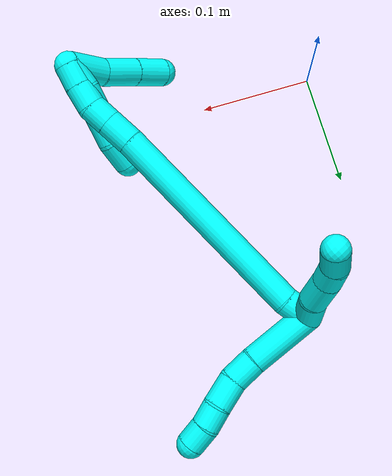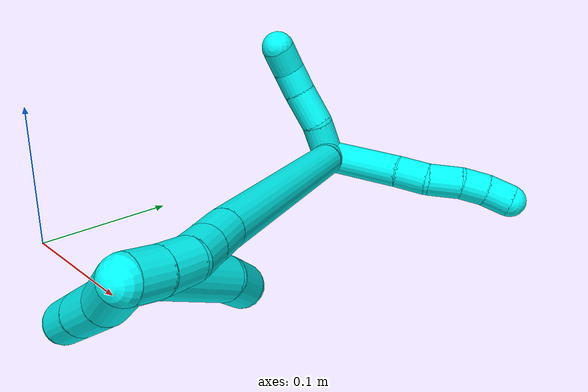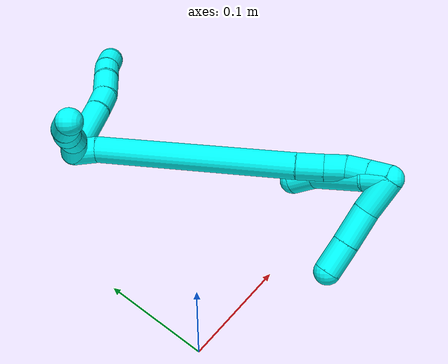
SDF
<sdf version="1.7">
 <world name="default">
  <model name="photoneo_s_sensor">
   <static>1</static>
   <pose>0 0 2 1.57079 1.57079 3.14159</pose>
   <link name="link">
    <inertial><mass>0.1</mass></inertial>
    <sensor name="sensor" type="depth">
     <update_rate>30</update_rate>
     <camera>
      <horizontal_fov>1.22</horizontal_fov>
      <image><width>1920</width><height>1200</height><format>B8G8R8</format></image>
      <clip><near>0.1</near><far>4</far></clip>
      <depth_camera><output>points</output></depth_camera>
     </camera>
     <plugin name="camera_plugin" filename="libgazebo_ros_depth_camera.so">
      <baseline>0.2</baseline>
      <alwaysOn>1</alwaysOn>
      <updateRate>0.0</updateRate>
      <cameraName>camera_ir</cameraName>
      <imageTopicName>/camera/color/image_raw</imageTopicName>
      <cameraInfoTopicName>/camera/color/camera_info</cameraInfoTopicName>
      <depthImageTopicName>/camera/depth/image_raw</depthImageTopicName>
      <depthImageCameraInfoTopicName>/camera/depth/camera_info</depthImageCameraInfoTopicName>
      <pointCloudTopicName>/camera/depth/points</pointCloudTopicName>
      <frameName>fr_optical</frameName>
      <pointCloudCutoff>0.1</pointCloudCutoff>
      <pointCloudCutoffMax>2.0</pointCloudCutoffMax>
      <distortionK1>0</distortionK1>
      <distortionK2>0</distortionK2>
      <distortionK3>0</distortionK3>
      <distortionT1>0</distortionT1>
      <distortionT2>0</distortionT2>
      <CxPrime>0</CxPrime>
      <Cx>0</Cx>
      <Cy>0</Cy>
      <focalLength>0</focalLength>
      <hackBaseline>0</hackBaseline>
     </plugin>
    </sensor>
   </link>
  </model>
  <model name="bin">
   <static>1</static>
   <link name="bottom">
    <collision name="collision-bottom">
     <pose>0 0 -0.01 0 -0 0</pose>
     <geometry><box><size>0.8 0.6 0.02</size></box></geometry>
     <surface>
      <friction><ode><mu>100</mu><mu2>100</mu2></ode></friction>
      <contact><collide_bitmask>65535</collide_bitmask></contact>
     </surface>
    </collision>
   </link>
   <link name="west_wall">
    <collision name="collision-west_wall">
     <pose>-0.41 0 0.1 0 -0 0</pose>
     <geometry><box><size>0.02 0.6 0.2</size></box></geometry>
     <surface>
      <friction><ode><mu>100</mu><mu2>100</mu2></ode></friction>
      <contact><collide_bitmask>65535</collide_bitmask></contact>
     </surface>
    </collision>
   </link>
   <link name="east_wall">
    <collision name="collision-east_wall">
     <pose>0.41 0 0.1 0 -0 0</pose>
     <geometry><box><size>0.02 0.6 0.2</size></box></geometry>
     <surface>
      <friction><ode><mu>100</mu><mu2>100</mu2></ode></friction>
      <contact><collide_bitmask>65535</collide_bitmask></contact>
     </surface>
    </collision>
   </link>
   <link name="south_wall">
    <collision name="collision-south_wall">
     <pose>0 -0.31 0.1 0 -0 0</pose>
     <geometry><box><size>0.8 0.02 0.2</size></box></geometry>
     <surface>
      <friction><ode><mu>100</mu><mu2>100</mu2></ode></friction>
      <contact><collide_bitmask>65535</collide_bitmask></contact>
     </surface>
    </collision>
   </link>
   <link name="north_wall">
    <collision name="collision-north_wall">
     <pose>0 0.31 0.1 0 -0 0</pose>
     <geometry><box><size>0.8 0.02 0.2</size></box></geometry>
     <surface>
      <friction><ode><mu>100</mu><mu2>100</mu2></ode></friction>
      <contact><collide_bitmask>65535</collide_bitmask></contact>
     </surface>
    </collision>
   </link>
  </model>
  <model name="3">
   <static>0</static>
   <link name="3">
    <collision name="collision-cylinder-e_1_2_8">
     <pose>0.023186 0.018811 0.001974 -1.46625 0.886525 -0.808074</pose>
     <geometry><cylinder><radius>0.0125</radius><length>0.059845</length></cylinder></geometry>
     <surface>
      <friction><ode><mu>1.16</mu><mu2>1.16</mu2><slip1>0</slip1><slip2>0</slip2></ode></friction>
      <contact><ode><kp>1e+06</kp><kd>1</kd><max_vel>0</max_vel><min_depth>0.001</min_depth></ode></contact>
     </surface>
    </collision>
    <visual name="visual-cylinder-e_1_2_8">
     <pose>0.023186 0.018811 0.001974 -1.46625 0.886525 -0.808074</pose>
     <geometry><cylinder><radius>0.0125</radius><length>0.059845</length></cylinder></geometry>
     <material><ambient>0.003922 1 0.996078 1</ambient></material>
    </visual>
    <collision name="collision-cylinder-e_2_8_9">
     <pose>0.055933 0.044662 0.003749 -1.59908 0.935888 -0.958853</pose>
     <geometry><cylinder><radius>0.0125</radius><length>0.023749</length></cylinder></geometry>
     <surface>
      <friction><ode><mu>1.16</mu><mu2>1.16</mu2><slip1>0</slip1><slip2>0</slip2></ode></friction>
      <contact><ode><kp>1e+06</kp><kd>1</kd><max_vel>0</max_vel><min_depth>0.001</min_depth></ode></contact>
     </surface>
    </collision>
    <visual name="visual-cylinder-e_2_8_9">
     <pose>0.055933 0.044662 0.003749 -1.59908 0.935888 -0.958853</pose>
     <geometry><cylinder><radius>0.0125</radius><length>0.023749</length></cylinder></geometry>
     <material><ambient>0.003922 1 0.996078 1</ambient></material>
    </visual>
    <collision name="collision-cylinder-e_3_9_10">
     <pose>0.074591 0.060245 0.000296 -1.93467 0.782951 -1.07922</pose>
     <geometry><cylinder><radius>0.0125</radius><length>0.025794</length></cylinder></geometry>
     <surface>
      <friction><ode><mu>1.16</mu><mu2>1.16</mu2><slip1>0</slip1><slip2>0</slip2></ode></friction>
      <contact><ode><kp>1e+06</kp><kd>1</kd><max_vel>0</max_vel><min_depth>0.001</min_depth></ode></contact>
     </surface>
    </collision>
    <visual name="visual-cylinder-e_3_9_10">
     <pose>0.074591 0.060245 0.000296 -1.93467 0.782951 -1.07922</pose>
     <geometry><cylinder><radius>0.0125</radius><length>0.025794</length></cylinder></geometry>
     <material><ambient>0.003922 1 0.996078 1</ambient></material>
    </visual>
    <collision name="collision-cylinder-e_4_10_11">
     <pose>0.091672 0.073962 -0.006091 -2.11535 0.922509 -1.44564</pose>
     <geometry><cylinder><radius>0.0125</radius><length>0.020031</length></cylinder></geometry>
     <surface>
      <friction><ode><mu>1.16</mu><mu2>1.16</mu2><slip1>0</slip1><slip2>0</slip2></ode></friction>
      <contact><ode><kp>1e+06</kp><kd>1</kd><max_vel>0</max_vel><min_depth>0.001</min_depth></ode></contact>
     </surface>
    </collision>
    <visual name="visual-cylinder-e_4_10_11">
     <pose>0.091672 0.073962 -0.006091 -2.11535 0.922509 -1.44564</pose>
     <geometry><cylinder><radius>0.0125</radius><length>0.020031</length></cylinder></geometry>
     <material><ambient>0.003922 1 0.996078 1</ambient></material>
    </visual>
    <collision name="collision-cylinder-e_5_11_6">
     <pose>0.108825 0.083463 -0.010975 -1.95538 1.0998 -1.47593</pose>
     <geometry><cylinder><radius>0.0125</radius><length>0.02058</length></cylinder></geometry>
     <surface>
      <friction><ode><mu>1.16</mu><mu2>1.16</mu2><slip1>0</slip1><slip2>0</slip2></ode></friction>
      <contact><ode><kp>1e+06</kp><kd>1</kd><max_vel>0</max_vel><min_depth>0.001</min_depth></ode></contact>
     </surface>
    </collision>
    <visual name="visual-cylinder-e_5_11_6">
     <pose>0.108825 0.083463 -0.010975 -1.95538 1.0998 -1.47593</pose>
     <geometry><cylinder><radius>0.0125</radius><length>0.02058</length></cylinder></geometry>
     <material><ambient>0.003922 1 0.996078 1</ambient></material>
    </visual>
    <collision name="collision-cylinder-e_1_2_12">
     <pose>-0.012252 0.006492 0.005823 -0.839672 -0.952165 0.45246</pose>
     <geometry><cylinder><radius>0.0125</radius><length>0.030078</length></cylinder></geometry>
     <surface>
      <friction><ode><mu>1.16</mu><mu2>1.16</mu2><slip1>0</slip1><slip2>0</slip2></ode></friction>
      <contact><ode><kp>1e+06</kp><kd>1</kd><max_vel>0</max_vel><min_depth>0.001</min_depth></ode></contact>
     </surface>
    </collision>
    <visual name="visual-cylinder-e_1_2_12">
     <pose>-0.012252 0.006492 0.005823 -0.839672 -0.952165 0.45246</pose>
     <geometry><cylinder><radius>0.0125</radius><length>0.030078</length></cylinder></geometry>
     <material><ambient>0.003922 1 0.996078 1</ambient></material>
    </visual>
    <collision name="collision-cylinder-e_2_12_13">
     <pose>-0.038073 0.016556 0.015477 -0.750412 -1.2025 0.527761</pose>
     <geometry><cylinder><radius>0.0125</radius><length>0.02909</length></cylinder></geometry>
     <surface>
      <friction><ode><mu>1.16</mu><mu2>1.16</mu2><slip1>0</slip1><slip2>0</slip2></ode></friction>
      <contact><ode><kp>1e+06</kp><kd>1</kd><max_vel>0</max_vel><min_depth>0.001</min_depth></ode></contact>
     </surface>
    </collision>
    <visual name="visual-cylinder-e_2_12_13">
     <pose>-0.038073 0.016556 0.015477 -0.750412 -1.2025 0.527761</pose>
     <geometry><cylinder><radius>0.0125</radius><length>0.02909</length></cylinder></geometry>
     <material><ambient>0.003922 1 0.996078 1</ambient></material>
    </visual>
    <collision name="collision-cylinder-e_3_13_14">
     <pose>-0.060615 0.02328 0.022721 -0.745702 -1.09289 0.467124</pose>
     <geometry><cylinder><radius>0.0125</radius><length>0.020209</length></cylinder></geometry>
     <surface>
      <friction><ode><mu>1.16</mu><mu2>1.16</mu2><slip1>0</slip1><slip2>0</slip2></ode></friction>
      <contact><ode><kp>1e+06</kp><kd>1</kd><max_vel>0</max_vel><min_depth>0.001</min_depth></ode></contact>
     </surface>
    </collision>
    <visual name="visual-cylinder-e_3_13_14">
     <pose>-0.060615 0.02328 0.022721 -0.745702 -1.09289 0.467124</pose>
     <geometry><cylinder><radius>0.0125</radius><length>0.020209</length></cylinder></geometry>
     <material><ambient>0.003922 1 0.996078 1</ambient></material>
    </visual>
    <collision name="collision-cylinder-e_4_14_5">
     <pose>-0.077219 0.030177 0.031972 -0.570238 -0.833209 0.257961</pose>
     <geometry><cylinder><radius>0.0125</radius><length>0.020623</length></cylinder></geometry>
     <surface>
      <friction><ode><mu>1.16</mu><mu2>1.16</mu2><slip1>0</slip1><slip2>0</slip2></ode></friction>
      <contact><ode><kp>1e+06</kp><kd>1</kd><max_vel>0</max_vel><min_depth>0.001</min_depth></ode></contact>
     </surface>
    </collision>
    <visual name="visual-cylinder-e_4_14_5">
     <pose>-0.077219 0.030177 0.031972 -0.570238 -0.833209 0.257961</pose>
     <geometry><cylinder><radius>0.0125</radius><length>0.020623</length></cylinder></geometry>
     <material><ambient>0.003922 1 0.996078 1</ambient></material>
    </visual>
    <collision name="collision-cylinder-e_1_2_15">
     <pose>0.002152 0.001248 0.011313 -0.109833 0.186832 -0.0103</pose>
     <geometry><cylinder><radius>0.0125</radius><length>0.023166</length></cylinder></geometry>
     <surface>
      <friction><ode><mu>1.16</mu><mu2>1.16</mu2><slip1>0</slip1><slip2>0</slip2></ode></friction>
      <contact><ode><kp>1e+06</kp><kd>1</kd><max_vel>0</max_vel><min_depth>0.001</min_depth></ode></contact>
     </surface>
    </collision>
    <visual name="visual-cylinder-e_1_2_15">
     <pose>0.002152 0.001248 0.011313 -0.109833 0.186832 -0.0103</pose>
     <geometry><cylinder><radius>0.0125</radius><length>0.023166</length></cylinder></geometry>
     <material><ambient>0.003922 1 0.996078 1</ambient></material>
    </visual>
    <collision name="collision-cylinder-e_2_15_16">
     <pose>0.012343 -0.00378 0.117248 0.066217 0.084583 0.002803</pose>
     <geometry><cylinder><radius>0.0125</radius><length>0.190341</length></cylinder></geometry>
     <surface>
      <friction><ode><mu>1.16</mu><mu2>1.16</mu2><slip1>0</slip1><slip2>0</slip2></ode></friction>
      <contact><ode><kp>1e+06</kp><kd>1</kd><max_vel>0</max_vel><min_depth>0.001</min_depth></ode></contact>
     </surface>
    </collision>
    <visual name="visual-cylinder-e_2_15_16">
     <pose>0.012343 -0.00378 0.117248 0.066217 0.084583 0.002803</pose>
     <geometry><cylinder><radius>0.0125</radius><length>0.190341</length></cylinder></geometry>
     <material><ambient>0.003922 1 0.996078 1</ambient></material>
    </visual>
    <collision name="collision-cylinder-e_3_16_17">
     <pose>0.022249 -0.010618 0.224293 0.045355 0.148915 0.003384</pose>
     <geometry><cylinder><radius>0.0125</radius><length>0.025149</length></cylinder></geometry>
     <surface>
      <friction><ode><mu>1.16</mu><mu2>1.16</mu2><slip1>0</slip1><slip2>0</slip2></ode></friction>
      <contact><ode><kp>1e+06</kp><kd>1</kd><max_vel>0</max_vel><min_depth>0.001</min_depth></ode></contact>
     </surface>
    </collision>
    <visual name="visual-cylinder-e_3_16_17">
     <pose>0.022249 -0.010618 0.224293 0.045355 0.148915 0.003384</pose>
     <geometry><cylinder><radius>0.0125</radius><length>0.025149</length></cylinder></geometry>
     <material><ambient>0.003922 1 0.996078 1</ambient></material>
    </visual>
    <collision name="collision-cylinder-e_4_17_18">
     <pose>0.025464 -0.011415 0.24679 0.02313 0.133071 0.001541</pose>
     <geometry><cylinder><radius>0.0125</radius><length>0.020335</length></cylinder></geometry>
     <surface>
      <friction><ode><mu>1.16</mu><mu2>1.16</mu2><slip1>0</slip1><slip2>0</slip2></ode></friction>
      <contact><ode><kp>1e+06</kp><kd>1</kd><max_vel>0</max_vel><min_depth>0.001</min_depth></ode></contact>
     </surface>
    </collision>
    <visual name="visual-cylinder-e_4_17_18">
     <pose>0.025464 -0.011415 0.24679 0.02313 0.133071 0.001541</pose>
     <geometry><cylinder><radius>0.0125</radius><length>0.020335</length></cylinder></geometry>
     <material><ambient>0.003922 1 0.996078 1</ambient></material>
    </visual>
    <collision name="collision-cylinder-e_5_18_19">
     <pose>0.025653 -0.01356 0.267038 0.185784 -0.111553 -0.010403</pose>
     <geometry><cylinder><radius>0.0125</radius><length>0.020831</length></cylinder></geometry>
     <surface>
      <friction><ode><mu>1.16</mu><mu2>1.16</mu2><slip1>0</slip1><slip2>0</slip2></ode></friction>
      <contact><ode><kp>1e+06</kp><kd>1</kd><max_vel>0</max_vel><min_depth>0.001</min_depth></ode></contact>
     </surface>
    </collision>
    <visual name="visual-cylinder-e_5_18_19">
     <pose>0.025653 -0.01356 0.267038 0.185784 -0.111553 -0.010403</pose>
     <geometry><cylinder><radius>0.0125</radius><length>0.020831</length></cylinder></geometry>
     <material><ambient>0.003922 1 0.996078 1</ambient></material>
    </visual>
    <collision name="collision-cylinder-e_6_19_1">
     <pose>0.02249 -0.01736 0.286917 0.192074 -0.199886 -0.01932</pose>
     <geometry><cylinder><radius>0.0125</radius><length>0.020178</length></cylinder></geometry>
     <surface>
      <friction><ode><mu>1.16</mu><mu2>1.16</mu2><slip1>0</slip1><slip2>0</slip2></ode></friction>
      <contact><ode><kp>1e+06</kp><kd>1</kd><max_vel>0</max_vel><min_depth>0.001</min_depth></ode></contact>
     </surface>
    </collision>
    <visual name="visual-cylinder-e_6_19_1">
     <pose>0.02249 -0.01736 0.286917 0.192074 -0.199886 -0.01932</pose>
     <geometry><cylinder><radius>0.0125</radius><length>0.020178</length></cylinder></geometry>
     <material><ambient>0.003922 1 0.996078 1</ambient></material>
    </visual>
    <collision name="collision-cylinder-e_1_1_20">
     <pose>0.022336 -0.019286 0.284666 3.13838 0.153431 3.09977</pose>
     <geometry><cylinder><radius>0.0125</radius><length>0.024199</length></cylinder></geometry>
     <surface>
      <friction><ode><mu>1.16</mu><mu2>1.16</mu2><slip1>0</slip1><slip2>0</slip2></ode></friction>
      <contact><ode><kp>1e+06</kp><kd>1</kd><max_vel>0</max_vel><min_depth>0.001</min_depth></ode></contact>
     </surface>
    </collision>
    <visual name="visual-cylinder-e_1_1_20">
     <pose>0.022336 -0.019286 0.284666 3.13838 0.153431 3.09977</pose>
     <geometry><cylinder><radius>0.0125</radius><length>0.024199</length></cylinder></geometry>
     <material><ambient>0.003922 1 0.996078 1</ambient></material>
    </visual>
    <collision name="collision-cylinder-e_2_20_21">
     <pose>0.03304 -0.019674 0.248639 3.12705 0.352486 3.05999</pose>
     <geometry><cylinder><radius>0.0125</radius><length>0.051298</length></cylinder></geometry>
     <surface>
      <friction><ode><mu>1.16</mu><mu2>1.16</mu2><slip1>0</slip1><slip2>0</slip2></ode></friction>
      <contact><ode><kp>1e+06</kp><kd>1</kd><max_vel>0</max_vel><min_depth>0.001</min_depth></ode></contact>
     </surface>
    </collision>
    <visual name="visual-cylinder-e_2_20_21">
     <pose>0.03304 -0.019674 0.248639 3.12705 0.352486 3.05999</pose>
     <geometry><cylinder><radius>0.0125</radius><length>0.051298</length></cylinder></geometry>
     <material><ambient>0.003922 1 0.996078 1</ambient></material>
    </visual>
    <collision name="collision-cylinder-e_3_21_4">
     <pose>0.045501 -0.023396 0.213357 2.84954 0.298752 1.5938</pose>
     <geometry><cylinder><radius>0.0125</radius><length>0.024503</length></cylinder></geometry>
     <surface>
      <friction><ode><mu>1.16</mu><mu2>1.16</mu2><slip1>0</slip1><slip2>0</slip2></ode></friction>
      <contact><ode><kp>1e+06</kp><kd>1</kd><max_vel>0</max_vel><min_depth>0.001</min_depth></ode></contact>
     </surface>
    </collision>
    <visual name="visual-cylinder-e_3_21_4">
     <pose>0.045501 -0.023396 0.213357 2.84954 0.298752 1.5938</pose>
     <geometry><cylinder><radius>0.0125</radius><length>0.024503</length></cylinder></geometry>
     <material><ambient>0.003922 1 0.996078 1</ambient></material>
    </visual>
    <collision name="collision-cylinder-e_1_1_22">
     <pose>0.019662 -0.033622 0.286331 2.19221 -0.046641 -0.090717</pose>
     <geometry><cylinder><radius>0.0125</radius><length>0.035398</length></cylinder></geometry>
     <surface>
      <friction><ode><mu>1.16</mu><mu2>1.16</mu2><slip1>0</slip1><slip2>0</slip2></ode></friction>
      <contact><ode><kp>1e+06</kp><kd>1</kd><max_vel>0</max_vel><min_depth>0.001</min_depth></ode></contact>
     </surface>
    </collision>
    <visual name="visual-cylinder-e_1_1_22">
     <pose>0.019662 -0.033622 0.286331 2.19221 -0.046641 -0.090717</pose>
     <geometry><cylinder><radius>0.0125</radius><length>0.035398</length></cylinder></geometry>
     <material><ambient>0.003922 1 0.996078 1</ambient></material>
    </visual>
    <collision name="collision-cylinder-e_2_22_23">
     <pose>0.01548 -0.062561 0.267589 2.09645 -0.196792 -0.339473</pose>
     <geometry><cylinder><radius>0.0125</radius><length>0.034337</length></cylinder></geometry>
     <surface>
      <friction><ode><mu>1.16</mu><mu2>1.16</mu2><slip1>0</slip1><slip2>0</slip2></ode></friction>
      <contact><ode><kp>1e+06</kp><kd>1</kd><max_vel>0</max_vel><min_depth>0.001</min_depth></ode></contact>
     </surface>
    </collision>
    <visual name="visual-cylinder-e_2_22_23">
     <pose>0.01548 -0.062561 0.267589 2.09645 -0.196792 -0.339473</pose>
     <geometry><cylinder><radius>0.0125</radius><length>0.034337</length></cylinder></geometry>
     <material><ambient>0.003922 1 0.996078 1</ambient></material>
    </visual>
    <collision name="collision-cylinder-e_3_23_3">
     <pose>0.009163 -0.089779 0.251389 2.1204 -0.196864 -0.349005</pose>
     <geometry><cylinder><radius>0.0125</radius><length>0.030265</length></cylinder></geometry>
     <surface>
      <friction><ode><mu>1.16</mu><mu2>1.16</mu2><slip1>0</slip1><slip2>0</slip2></ode></friction>
      <contact><ode><kp>1e+06</kp><kd>1</kd><max_vel>0</max_vel><min_depth>0.001</min_depth></ode></contact>
     </surface>
    </collision>
    <visual name="visual-cylinder-e_3_23_3">
     <pose>0.009163 -0.089779 0.251389 2.1204 -0.196864 -0.349005</pose>
     <geometry><cylinder><radius>0.0125</radius><length>0.030265</length></cylinder></geometry>
     <material><ambient>0.003922 1 0.996078 1</ambient></material>
    </visual>
    <collision name="collision-sphere-3">
     <pose>0.006203 -0.102434 0.243637 0 -0 0</pose>
     <geometry><sphere><radius>0.0125</radius></sphere></geometry>
     <surface>
      <friction><ode><mu>1.16</mu><mu2>1.16</mu2><slip1>0</slip1><slip2>0</slip2></ode></friction>
      <contact><ode><kp>1e+06</kp><kd>1</kd><max_vel>0</max_vel><min_depth>0.001</min_depth></ode></contact>
     </surface>
    </collision>
    <visual name="visual-sphere-3">
     <pose>0.006203 -0.102434 0.243637 0 -0 0</pose>
     <geometry><sphere><radius>0.0125</radius></sphere></geometry>
     <material><ambient>0.003922 1 0.996078 1</ambient></material>
    </visual>
    <collision name="collision-sphere-23">
     <pose>0.012123 -0.077125 0.259141 0 -0 0</pose>
     <geometry><sphere><radius>0.0125</radius></sphere></geometry>
     <surface>
      <friction><ode><mu>1.16</mu><mu2>1.16</mu2><slip1>0</slip1><slip2>0</slip2></ode></friction>
      <contact><ode><kp>1e+06</kp><kd>1</kd><max_vel>0</max_vel><min_depth>0.001</min_depth></ode></contact>
     </surface>
    </collision>
    <visual name="visual-sphere-23">
     <pose>0.012123 -0.077125 0.259141 0 -0 0</pose>
     <geometry><sphere><radius>0.0125</radius></sphere></geometry>
     <material><ambient>0.003922 1 0.996078 1</ambient></material>
    </visual>
    <collision name="collision-sphere-22">
     <pose>0.018837 -0.047996 0.276038 0 -0 0</pose>
     <geometry><sphere><radius>0.0125</radius></sphere></geometry>
     <surface>
      <friction><ode><mu>1.16</mu><mu2>1.16</mu2><slip1>0</slip1><slip2>0</slip2></ode></friction>
      <contact><ode><kp>1e+06</kp><kd>1</kd><max_vel>0</max_vel><min_depth>0.001</min_depth></ode></contact>
     </surface>
    </collision>
    <visual name="visual-sphere-22">
     <pose>0.018837 -0.047996 0.276038 0 -0 0</pose>
     <geometry><sphere><radius>0.0125</radius></sphere></geometry>
     <material><ambient>0.003922 1 0.996078 1</ambient></material>
    </visual>
    <collision name="collision-sphere-4">
     <pose>0.049107 -0.026767 0.202144 0 -0 0</pose>
     <geometry><sphere><radius>0.0125</radius></sphere></geometry>
     <surface>
      <friction><ode><mu>1.16</mu><mu2>1.16</mu2><slip1>0</slip1><slip2>0</slip2></ode></friction>
      <contact><ode><kp>1e+06</kp><kd>1</kd><max_vel>0</max_vel><min_depth>0.001</min_depth></ode></contact>
     </surface>
    </collision>
    <visual name="visual-sphere-4">
     <pose>0.049107 -0.026767 0.202144 0 -0 0</pose>
     <geometry><sphere><radius>0.0125</radius></sphere></geometry>
     <material><ambient>0.003922 1 0.996078 1</ambient></material>
    </visual>
    <collision name="collision-sphere-21">
     <pose>0.041895 -0.020024 0.22457 0 -0 0</pose>
     <geometry><sphere><radius>0.0125</radius></sphere></geometry>
     <surface>
      <friction><ode><mu>1.16</mu><mu2>1.16</mu2><slip1>0</slip1><slip2>0</slip2></ode></friction>
      <contact><ode><kp>1e+06</kp><kd>1</kd><max_vel>0</max_vel><min_depth>0.001</min_depth></ode></contact>
     </surface>
    </collision>
    <visual name="visual-sphere-21">
     <pose>0.041895 -0.020024 0.22457 0 -0 0</pose>
     <geometry><sphere><radius>0.0125</radius></sphere></geometry>
     <material><ambient>0.003922 1 0.996078 1</ambient></material>
    </visual>
    <collision name="collision-sphere-20">
     <pose>0.024185 -0.019324 0.272709 0 -0 0</pose>
     <geometry><sphere><radius>0.0125</radius></sphere></geometry>
     <surface>
      <friction><ode><mu>1.16</mu><mu2>1.16</mu2><slip1>0</slip1><slip2>0</slip2></ode></friction>
      <contact><ode><kp>1e+06</kp><kd>1</kd><max_vel>0</max_vel><min_depth>0.001</min_depth></ode></contact>
     </surface>
    </collision>
    <visual name="visual-sphere-20">
     <pose>0.024185 -0.019324 0.272709 0 -0 0</pose>
     <geometry><sphere><radius>0.0125</radius></sphere></geometry>
     <material><ambient>0.003922 1 0.996078 1</ambient></material>
    </visual>
    <collision name="collision-sphere-6">
     <pose>0.117995 0.087791 -0.012727 0 -0 0</pose>
     <geometry><sphere><radius>0.0125</radius></sphere></geometry>
     <surface>
      <friction><ode><mu>1.16</mu><mu2>1.16</mu2><slip1>0</slip1><slip2>0</slip2></ode></friction>
      <contact><ode><kp>1e+06</kp><kd>1</kd><max_vel>0</max_vel><min_depth>0.001</min_depth></ode></contact>
     </surface>
    </collision>
    <visual name="visual-sphere-6">
     <pose>0.117995 0.087791 -0.012727 0 -0 0</pose>
     <geometry><sphere><radius>0.0125</radius></sphere></geometry>
     <material><ambient>0.003922 1 0.996078 1</ambient></material>
    </visual>
    <collision name="collision-sphere-11">
     <pose>0.099656 0.079135 -0.009224 0 -0 0</pose>
     <geometry><sphere><radius>0.0125</radius></sphere></geometry>
     <surface>
      <friction><ode><mu>1.16</mu><mu2>1.16</mu2><slip1>0</slip1><slip2>0</slip2></ode></friction>
      <contact><ode><kp>1e+06</kp><kd>1</kd><max_vel>0</max_vel><min_depth>0.001</min_depth></ode></contact>
     </surface>
    </collision>
    <visual name="visual-sphere-11">
     <pose>0.099656 0.079135 -0.009224 0 -0 0</pose>
     <geometry><sphere><radius>0.0125</radius></sphere></geometry>
     <material><ambient>0.003922 1 0.996078 1</ambient></material>
    </visual>
    <collision name="collision-sphere-10">
     <pose>0.083688 0.068789 -0.002958 0 -0 0</pose>
     <geometry><sphere><radius>0.0125</radius></sphere></geometry>
     <surface>
      <friction><ode><mu>1.16</mu><mu2>1.16</mu2><slip1>0</slip1><slip2>0</slip2></ode></friction>
      <contact><ode><kp>1e+06</kp><kd>1</kd><max_vel>0</max_vel><min_depth>0.001</min_depth></ode></contact>
     </surface>
    </collision>
    <visual name="visual-sphere-10">
     <pose>0.083688 0.068789 -0.002958 0 -0 0</pose>
     <geometry><sphere><radius>0.0125</radius></sphere></geometry>
     <material><ambient>0.003922 1 0.996078 1</ambient></material>
    </visual>
    <collision name="collision-sphere-9">
     <pose>0.065494 0.051702 0.003549 0 -0 0</pose>
     <geometry><sphere><radius>0.0125</radius></sphere></geometry>
     <surface>
      <friction><ode><mu>1.16</mu><mu2>1.16</mu2><slip1>0</slip1><slip2>0</slip2></ode></friction>
      <contact><ode><kp>1e+06</kp><kd>1</kd><max_vel>0</max_vel><min_depth>0.001</min_depth></ode></contact>
     </surface>
    </collision>
    <visual name="visual-sphere-9">
     <pose>0.065494 0.051702 0.003549 0 -0 0</pose>
     <geometry><sphere><radius>0.0125</radius></sphere></geometry>
     <material><ambient>0.003922 1 0.996078 1</ambient></material>
    </visual>
    <collision name="collision-sphere-2">
     <geometry><sphere><radius>0.0125</radius></sphere></geometry>
     <surface>
      <friction><ode><mu>1.16</mu><mu2>1.16</mu2><slip1>0</slip1><slip2>0</slip2></ode></friction>
      <contact><ode><kp>1e+06</kp><kd>1</kd><max_vel>0</max_vel><min_depth>0.001</min_depth></ode></contact>
     </surface>
    </collision>
    <visual name="visual-sphere-2">
     <geometry><sphere><radius>0.0125</radius></sphere></geometry>
     <material><ambient>0.003922 1 0.996078 1</ambient></material>
    </visual>
    <collision name="collision-sphere-19">
     <pose>0.024494 -0.015472 0.27721 0 -0 0</pose>
     <geometry><sphere><radius>0.0125</radius></sphere></geometry>
     <surface>
      <friction><ode><mu>1.16</mu><mu2>1.16</mu2><slip1>0</slip1><slip2>0</slip2></ode></friction>
      <contact><ode><kp>1e+06</kp><kd>1</kd><max_vel>0</max_vel><min_depth>0.001</min_depth></ode></contact>
     </surface>
    </collision>
    <visual name="visual-sphere-19">
     <pose>0.024494 -0.015472 0.27721 0 -0 0</pose>
     <geometry><sphere><radius>0.0125</radius></sphere></geometry>
     <material><ambient>0.003922 1 0.996078 1</ambient></material>
    </visual>
    <collision name="collision-sphere-8">
     <pose>0.046372 0.037622 0.003948 0 -0 0</pose>
     <geometry><sphere><radius>0.0125</radius></sphere></geometry>
     <surface>
      <friction><ode><mu>1.16</mu><mu2>1.16</mu2><slip1>0</slip1><slip2>0</slip2></ode></friction>
      <contact><ode><kp>1e+06</kp><kd>1</kd><max_vel>0</max_vel><min_depth>0.001</min_depth></ode></contact>
     </surface>
    </collision>
    <visual name="visual-sphere-8">
     <pose>0.046372 0.037622 0.003948 0 -0 0</pose>
     <geometry><sphere><radius>0.0125</radius></sphere></geometry>
     <material><ambient>0.003922 1 0.996078 1</ambient></material>
    </visual>
    <collision name="collision-sphere-12">
     <pose>-0.024503 0.012985 0.011647 0 -0 0</pose>
     <geometry><sphere><radius>0.0125</radius></sphere></geometry>
     <surface>
      <friction><ode><mu>1.16</mu><mu2>1.16</mu2><slip1>0</slip1><slip2>0</slip2></ode></friction>
      <contact><ode><kp>1e+06</kp><kd>1</kd><max_vel>0</max_vel><min_depth>0.001</min_depth></ode></contact>
     </surface>
    </collision>
    <visual name="visual-sphere-12">
     <pose>-0.024503 0.012985 0.011647 0 -0 0</pose>
     <geometry><sphere><radius>0.0125</radius></sphere></geometry>
     <material><ambient>0.003922 1 0.996078 1</ambient></material>
    </visual>
    <collision name="collision-sphere-13">
     <pose>-0.051643 0.020127 0.019307 0 -0 0</pose>
     <geometry><sphere><radius>0.0125</radius></sphere></geometry>
     <surface>
      <friction><ode><mu>1.16</mu><mu2>1.16</mu2><slip1>0</slip1><slip2>0</slip2></ode></friction>
      <contact><ode><kp>1e+06</kp><kd>1</kd><max_vel>0</max_vel><min_depth>0.001</min_depth></ode></contact>
     </surface>
    </collision>
    <visual name="visual-sphere-13">
     <pose>-0.051643 0.020127 0.019307 0 -0 0</pose>
     <geometry><sphere><radius>0.0125</radius></sphere></geometry>
     <material><ambient>0.003922 1 0.996078 1</ambient></material>
    </visual>
    <collision name="collision-sphere-14">
     <pose>-0.069588 0.026433 0.026135 0 -0 0</pose>
     <geometry><sphere><radius>0.0125</radius></sphere></geometry>
     <surface>
      <friction><ode><mu>1.16</mu><mu2>1.16</mu2><slip1>0</slip1><slip2>0</slip2></ode></friction>
      <contact><ode><kp>1e+06</kp><kd>1</kd><max_vel>0</max_vel><min_depth>0.001</min_depth></ode></contact>
     </surface>
    </collision>
    <visual name="visual-sphere-14">
     <pose>-0.069588 0.026433 0.026135 0 -0 0</pose>
     <geometry><sphere><radius>0.0125</radius></sphere></geometry>
     <material><ambient>0.003922 1 0.996078 1</ambient></material>
    </visual>
    <collision name="collision-sphere-5">
     <pose>-0.084851 0.03392 0.037809 0 -0 0</pose>
     <geometry><sphere><radius>0.0125</radius></sphere></geometry>
     <surface>
      <friction><ode><mu>1.16</mu><mu2>1.16</mu2><slip1>0</slip1><slip2>0</slip2></ode></friction>
      <contact><ode><kp>1e+06</kp><kd>1</kd><max_vel>0</max_vel><min_depth>0.001</min_depth></ode></contact>
     </surface>
    </collision>
    <visual name="visual-sphere-5">
     <pose>-0.084851 0.03392 0.037809 0 -0 0</pose>
     <geometry><sphere><radius>0.0125</radius></sphere></geometry>
     <material><ambient>0.003922 1 0.996078 1</ambient></material>
    </visual>
    <collision name="collision-sphere-15">
     <pose>0.004303 0.002495 0.022626 0 -0 0</pose>
     <geometry><sphere><radius>0.0125</radius></sphere></geometry>
     <surface>
      <friction><ode><mu>1.16</mu><mu2>1.16</mu2><slip1>0</slip1><slip2>0</slip2></ode></friction>
      <contact><ode><kp>1e+06</kp><kd>1</kd><max_vel>0</max_vel><min_depth>0.001</min_depth></ode></contact>
     </surface>
    </collision>
    <visual name="visual-sphere-15">
     <pose>0.004303 0.002495 0.022626 0 -0 0</pose>
     <geometry><sphere><radius>0.0125</radius></sphere></geometry>
     <material><ambient>0.003922 1 0.996078 1</ambient></material>
    </visual>
    <collision name="collision-sphere-16">
     <pose>0.020383 -0.010054 0.21187 0 -0 0</pose>
     <geometry><sphere><radius>0.0125</radius></sphere></geometry>
     <surface>
      <friction><ode><mu>1.16</mu><mu2>1.16</mu2><slip1>0</slip1><slip2>0</slip2></ode></friction>
      <contact><ode><kp>1e+06</kp><kd>1</kd><max_vel>0</max_vel><min_depth>0.001</min_depth></ode></contact>
     </surface>
    </collision>
    <visual name="visual-sphere-16">
     <pose>0.020383 -0.010054 0.21187 0 -0 0</pose>
     <geometry><sphere><radius>0.0125</radius></sphere></geometry>
     <material><ambient>0.003922 1 0.996078 1</ambient></material>
    </visual>
    <collision name="collision-sphere-17">
     <pose>0.024115 -0.011182 0.236715 0 -0 0</pose>
     <geometry><sphere><radius>0.0125</radius></sphere></geometry>
     <surface>
      <friction><ode><mu>1.16</mu><mu2>1.16</mu2><slip1>0</slip1><slip2>0</slip2></ode></friction>
      <contact><ode><kp>1e+06</kp><kd>1</kd><max_vel>0</max_vel><min_depth>0.001</min_depth></ode></contact>
     </surface>
    </collision>
    <visual name="visual-sphere-17">
     <pose>0.024115 -0.011182 0.236715 0 -0 0</pose>
     <geometry><sphere><radius>0.0125</radius></sphere></geometry>
     <material><ambient>0.003922 1 0.996078 1</ambient></material>
    </visual>
    <collision name="collision-sphere-18">
     <pose>0.026813 -0.011648 0.256865 0 -0 0</pose>
     <geometry><sphere><radius>0.0125</radius></sphere></geometry>
     <surface>
      <friction><ode><mu>1.16</mu><mu2>1.16</mu2><slip1>0</slip1><slip2>0</slip2></ode></friction>
      <contact><ode><kp>1e+06</kp><kd>1</kd><max_vel>0</max_vel><min_depth>0.001</min_depth></ode></contact>
     </surface>
    </collision>
    <visual name="visual-sphere-18">
     <pose>0.026813 -0.011648 0.256865 0 -0 0</pose>
     <geometry><sphere><radius>0.0125</radius></sphere></geometry>
     <material><ambient>0.003922 1 0.996078 1</ambient></material>
    </visual>
    <collision name="collision-sphere-1">
     <pose>0.020487 -0.019247 0.296623 0 -0 0</pose>
     <geometry><sphere><radius>0.0125</radius></sphere></geometry>
     <surface>
      <friction><ode><mu>1.16</mu><mu2>1.16</mu2><slip1>0</slip1><slip2>0</slip2></ode></friction>
      <contact><ode><kp>1e+06</kp><kd>1</kd><max_vel>0</max_vel><min_depth>0.001</min_depth></ode></contact>
     </surface>
    </collision>
    <visual name="visual-sphere-1">
     <pose>0.020487 -0.019247 0.296623 0 -0 0</pose>
     <geometry><sphere><radius>0.0125</radius></sphere></geometry>
     <material><ambient>0.003922 1 0.996078 1</ambient></material>
    </visual>
    <inertial>
     <pose>0.018323 -0.001624 0.130673 0 -0 0</pose>
     <mass>0.75</mass>
     <inertia>
      <ixx>0.000597</ixx>
      <ixy>0</ixy>
      <ixz>0</ixz>
      <iyy>0.000616</iyy>
      <iyz>0</iyz>
      <izz>-2.3e-05</izz>
     </inertia>
    </inertial>
   </link>
   <pose>0.072953 0.215327 0.034339 1.26228 0.755692 0.256531</pose>
  </model>
 </world>
</sdf>
